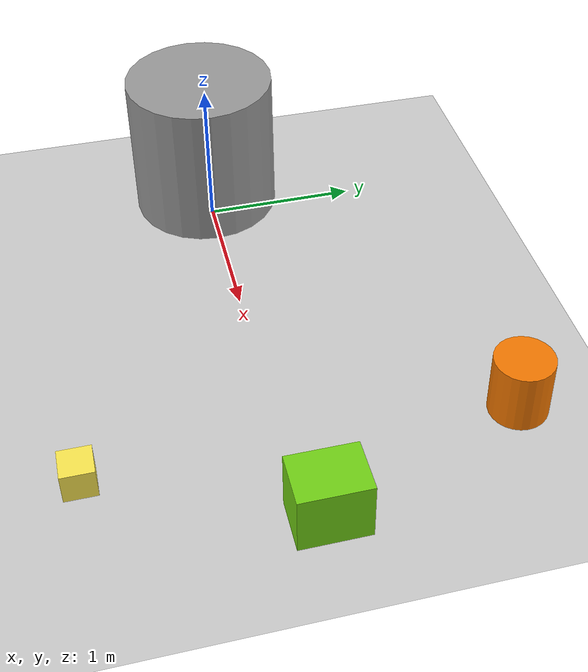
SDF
<sdf version="1.7">
 <world name="default">
  <light name="sun" type="directional">
   <pose>0 0 10 0 -0 0</pose>
   <diffuse>0.8 0.8 0.8 1</diffuse>
   <specular>0.2 0.2 0.2 1</specular>
   <attenuation>
    <range>1000</range>
    <constant>0.9</constant>
    <linear>0.01</linear>
    <quadratic>0.001</quadratic>
   </attenuation>
   <direction>-0.5 0.1 -0.9</direction>
   <spot><inner_angle>0</inner_angle><outer_angle>0</outer_angle><falloff>0</falloff></spot>
  </light>
  <model name="ground_plane">
   <static>1</static>
   <link name="link">
    <collision name="collision">
     <geometry><plane><normal>0 0 1</normal><size>100 100</size></plane></geometry>
     <surface>
      <contact><collide_bitmask>65535</collide_bitmask></contact>
      <friction><ode><mu>100</mu><mu2>50</mu2></ode></friction>
     </surface>
    </collision>
    <visual name="visual">
     <cast_shadows>0</cast_shadows>
     <geometry><plane><normal>0 0 1</normal><size>100 100</size></plane></geometry>
     <material>
      <script><uri>file://media/materials/scripts/gazebo.material</uri><name>Gazebo/Grey</name></script>
     </material>
    </visual>
   </link>
  </model>
  <gravity>0 0 -9.8</gravity>
  <magnetic_field>6e-06 2.3e-05 -4.2e-05</magnetic_field>
  <atmosphere type="adiabatic"/>
  <physics type="ode">
   <max_step_size>0.001</max_step_size>
   <real_time_factor>1</real_time_factor>
   <real_time_update_rate>1000</real_time_update_rate>
  </physics>
  <scene><ambient>0.4 0.4 0.4 1</ambient><background>0.7 0.7 0.7 1</background><shadows>1</shadows></scene>
  <spherical_coordinates>
   <surface_model>EARTH_WGS84</surface_model>
   <latitude_deg>0</latitude_deg>
   <longitude_deg>0</longitude_deg>
   <elevation>0</elevation>
   <heading_deg>0</heading_deg>
  </spherical_coordinates>
  <model name="unit_cylinder">
   <link name="link">
    <inertial>
     <mass>1</mass>
     <inertia><ixx>0.145833</ixx><ixy>0</ixy><ixz>0</ixz><iyy>0.145833</iyy><iyz>0</iyz><izz>0.125</izz></inertia>
    </inertial>
    <visual name="visual">
     <geometry><cylinder><radius>0.185773</radius><length>0.408649</length></cylinder></geometry>
     <material>
      <script><name>Gazebo/Grey</name><uri>file://media/materials/scripts/gazebo.material</uri></script>
      <shader type="pixel"><normal_map>__default__</normal_map></shader>
      <ambient>0.961 0.475 0 1</ambient>
      <diffuse>0.7 0.7 0.7 1</diffuse>
      <specular>0.01 0.01 0.01 1</specular>
      <emissive>0 0 0 1</emissive>
     </material>
    </visual>
    <collision name="collision">
     <geometry><cylinder><radius>0.185773</radius><length>0.408649</length></cylinder></geometry>
     <surface>
      <friction>
       <ode><mu>1</mu><mu2>1</mu2><fdir1>0 0 0</fdir1><slip1>0</slip1><slip2>0</slip2></ode>
       <torsional>
        <coefficient>1</coefficient>
        <patch_radius>0</patch_radius>
        <surface_radius>0</surface_radius>
        <use_patch_radius>1</use_patch_radius>
        <ode><slip>0</slip></ode>
       </torsional>
      </friction>
      <bounce><restitution_coefficient>0</restitution_coefficient><threshold>1e+06</threshold></bounce>
      <contact>
       <collide_without_contact>0</collide_without_contact>
       <collide_without_contact_bitmask>1</collide_without_contact_bitmask>
       <collide_bitmask>1</collide_bitmask>
       <ode>
        <soft_cfm>0</soft_cfm>
        <soft_erp>0.2</soft_erp>
        <kp>1e+13</kp>
        <kd>1</kd>
        <max_vel>0.01</max_vel>
        <min_depth>0</min_depth>
       </ode>
       <bullet>
        <split_impulse>1</split_impulse>
        <split_impulse_penetration_threshold>-0.01</split_impulse_penetration_threshold>
        <soft_cfm>0</soft_cfm>
        <soft_erp>0.2</soft_erp>
        <kp>1e+13</kp>
        <kd>1</kd>
       </bullet>
      </contact>
     </surface>
    </collision>
   </link>
   <static>0</static>
   <pose>2.33531 1.4303 0.204315 0 -0 0</pose>
  </model>
  <model name="unit_box">
   <link name="link">
    <inertial>
     <mass>1</mass>
     <inertia>
      <ixx>0.166667</ixx>
      <ixy>0</ixy>
      <ixz>0</ixz>
      <iyy>0.166667</iyy>
      <iyz>0</iyz>
      <izz>0.166667</izz>
     </inertia>
    </inertial>
    <visual name="visual">
     <geometry><box><size>0.327918 0.429408 0.390166</size></box></geometry>
     <material>
      <script><name>Gazebo/Grey</name><uri>file://media/materials/scripts/gazebo.material</uri></script>
      <shader type="pixel"><normal_map>__default__</normal_map></shader>
      <ambient>0.451 0.824 0.086 1</ambient>
      <diffuse>0.7 0.7 0.7 1</diffuse>
      <specular>0.01 0.01 0.01 1</specular>
      <emissive>0 0 0 1</emissive>
     </material>
    </visual>
    <collision name="collision">
     <geometry><box><size>0.327918 0.429408 0.390166</size></box></geometry>
     <surface>
      <friction>
       <ode><mu>1</mu><mu2>1</mu2><fdir1>0 0 0</fdir1><slip1>0</slip1><slip2>0</slip2></ode>
       <torsional>
        <coefficient>1</coefficient>
        <patch_radius>0</patch_radius>
        <surface_radius>0</surface_radius>
        <use_patch_radius>1</use_patch_radius>
        <ode><slip>0</slip></ode>
       </torsional>
      </friction>
      <bounce><restitution_coefficient>0</restitution_coefficient><threshold>1e+06</threshold></bounce>
      <contact>
       <collide_without_contact>0</collide_without_contact>
       <collide_without_contact_bitmask>1</collide_without_contact_bitmask>
       <collide_bitmask>1</collide_bitmask>
       <ode>
        <soft_cfm>0</soft_cfm>
        <soft_erp>0.2</soft_erp>
        <kp>1e+13</kp>
        <kd>1</kd>
        <max_vel>0.01</max_vel>
        <min_depth>0</min_depth>
       </ode>
       <bullet>
        <split_impulse>1</split_impulse>
        <split_impulse_penetration_threshold>-0.01</split_impulse_penetration_threshold>
        <soft_cfm>0</soft_cfm>
        <soft_erp>0.2</soft_erp>
        <kp>1e+13</kp>
        <kd>1</kd>
       </bullet>
      </contact>
     </surface>
    </collision>
   </link>
   <static>0</static>
   <pose>2.85269 0.1237 0.195083 0 -0 0</pose>
  </model>
  <model name="unit_box_0">
   <link name="link">
    <inertial>
     <mass>1</mass>
     <inertia>
      <ixx>0.166667</ixx>
      <ixy>0</ixy>
      <ixz>0</ixz>
      <iyy>0.166667</iyy>
      <iyz>0</iyz>
      <izz>0.166667</izz>
     </inertia>
    </inertial>
    <visual name="visual">
     <geometry><box><size>0.2 0.2 0.2</size></box></geometry>
     <material>
      <script><name>Gazebo/Grey</name><uri>file://media/materials/scripts/gazebo.material</uri></script>
      <shader type="pixel"><normal_map>__default__</normal_map></shader>
      <ambient>0.988 0.914 0.31 1</ambient>
      <diffuse>0.7 0.7 0.7 1</diffuse>
      <specular>0.01 0.01 0.01 1</specular>
      <emissive>0 0 0 1</emissive>
     </material>
    </visual>
    <collision name="collision">
     <geometry><box><size>1 1 1</size></box></geometry>
     <surface>
      <friction>
       <ode><mu>1</mu><mu2>1</mu2><fdir1>0 0 0</fdir1><slip1>0</slip1><slip2>0</slip2></ode>
       <torsional>
        <coefficient>1</coefficient>
        <patch_radius>0</patch_radius>
        <surface_radius>0</surface_radius>
        <use_patch_radius>1</use_patch_radius>
        <ode><slip>0</slip></ode>
       </torsional>
      </friction>
      <bounce><restitution_coefficient>0</restitution_coefficient><threshold>1e+06</threshold></bounce>
      <contact>
       <collide_without_contact>0</collide_without_contact>
       <collide_without_contact_bitmask>1</collide_without_contact_bitmask>
       <collide_bitmask>1</collide_bitmask>
       <ode>
        <soft_cfm>0</soft_cfm>
        <soft_erp>0.2</soft_erp>
        <kp>1e+13</kp>
        <kd>1</kd>
        <max_vel>0.01</max_vel>
        <min_depth>0</min_depth>
       </ode>
       <bullet>
        <split_impulse>1</split_impulse>
        <split_impulse_penetration_threshold>-0.01</split_impulse_penetration_threshold>
        <soft_cfm>0</soft_cfm>
        <soft_erp>0.2</soft_erp>
        <kp>1e+13</kp>
        <kd>1</kd>
       </bullet>
      </contact>
     </surface>
    </collision>
   </link>
   <static>0</static>
   <pose>2.29983 -1.17007 0.112583 0 -0 0</pose>
  </model>
  <model name="unit_cylinder_0">
   <link name="link">
    <inertial>
     <mass>1</mass>
     <inertia><ixx>0.145833</ixx><ixy>0</ixy><ixz>0</ixz><iyy>0.145833</iyy><iyz>0</iyz><izz>0.125</izz></inertia>
    </inertial>
    <kinematic>1</kinematic>
    <pose>0.178102 -0.134979 -0 0 -0 0</pose>
    <visual name="visual">
     <geometry><cylinder><radius>0.5</radius><length>1</length></cylinder></geometry>
     <material>
      <script><name>Gazebo/Grey</name><uri>file://media/materials/scripts/gazebo.material</uri></script>
      <shader type="pixel"><normal_map>__default__</normal_map></shader>
      <ambient>0.3 0.3 0.3 1</ambient>
      <diffuse>0.7 0.7 0.7 1</diffuse>
      <specular>0.01 0.01 0.01 1</specular>
      <emissive>0 0 0 1</emissive>
     </material>
    </visual>
    <collision name="collision">
     <geometry><cylinder><radius>0.5</radius><length>1.55302</length></cylinder></geometry>
     <surface>
      <friction>
       <ode><mu>1</mu><mu2>1</mu2><fdir1>0 0 0</fdir1><slip1>0</slip1><slip2>0</slip2></ode>
       <torsional>
        <coefficient>1</coefficient>
        <patch_radius>0</patch_radius>
        <surface_radius>0</surface_radius>
        <use_patch_radius>1</use_patch_radius>
        <ode><slip>0</slip></ode>
       </torsional>
      </friction>
      <bounce><restitution_coefficient>0</restitution_coefficient><threshold>1e+06</threshold></bounce>
      <contact>
       <collide_without_contact>0</collide_without_contact>
       <collide_without_contact_bitmask>1</collide_without_contact_bitmask>
       <collide_bitmask>1</collide_bitmask>
       <ode>
        <soft_cfm>0</soft_cfm>
        <soft_erp>0.2</soft_erp>
        <kp>1e+13</kp>
        <kd>1</kd>
        <max_vel>0.01</max_vel>
        <min_depth>0</min_depth>
       </ode>
       <bullet>
        <split_impulse>1</split_impulse>
        <split_impulse_penetration_threshold>-0.01</split_impulse_penetration_threshold>
        <soft_cfm>0</soft_cfm>
        <soft_erp>0.2</soft_erp>
        <kp>1e+13</kp>
        <kd>1</kd>
       </bullet>
      </contact>
     </surface>
    </collision>
   </link>
   <static>0</static>
   <pose>-0.357012 0.123794 0.509667 0 -0 1e-06</pose>
  </model>
 </world>
</sdf>
